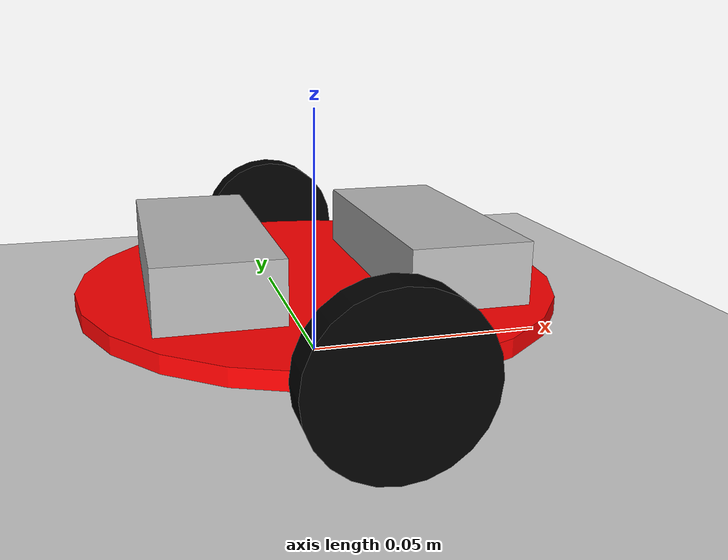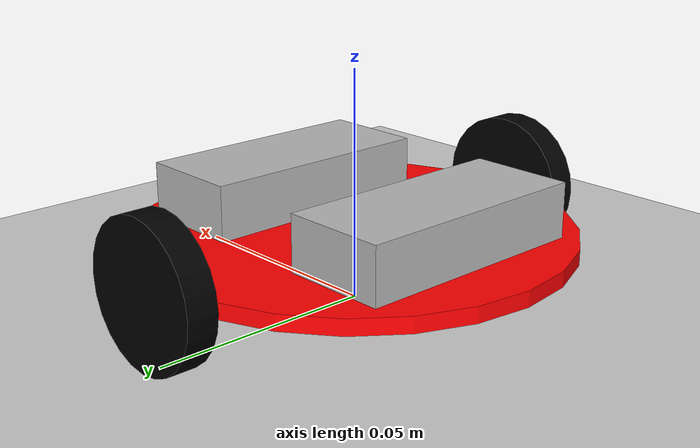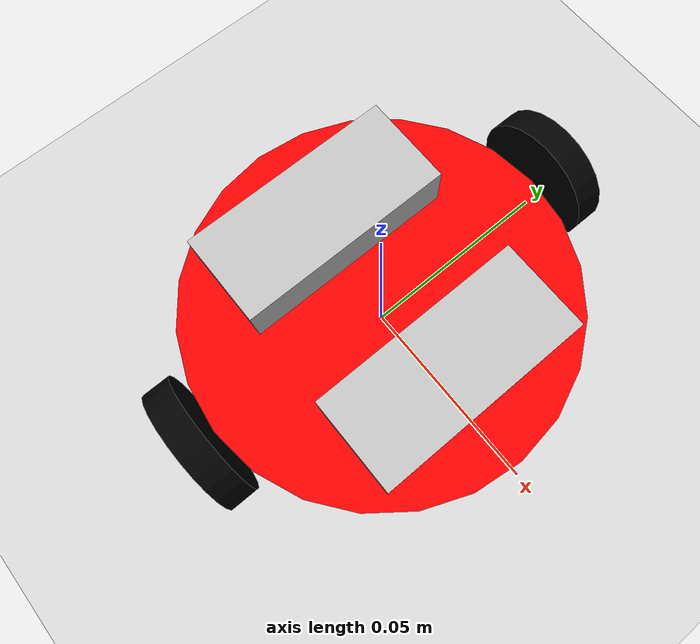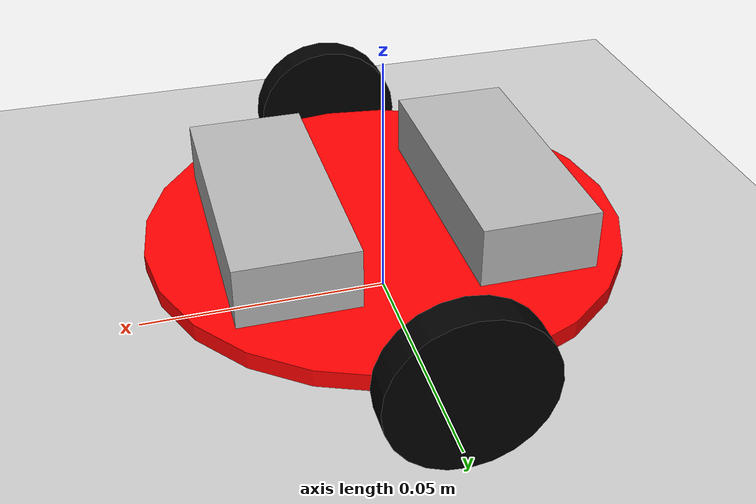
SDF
<sdf version='1.5'>
  <world name='default'>
    <physics type="ode">
      <gravity>0 0 -9.81</gravity>
      <real_time_update_rate>1000</real_time_update_rate>
      <max_step_size>0.001</max_step_size>
      <real_time_factor>1</real_time_factor>
      <ode>
        <solver>
          <iters>10</iters>
        </solver>
      </ode>
    </physics>

    <include>
      <uri>model://sun</uri>
    </include>

    <include>
      <uri>model://ground_plane</uri>
    </include>

    <include>
      <uri>model://ThreePi</uri>
      <plugin name="ThreePiCTRL_POS" filename="libThreePi_controller_POS.so"/>
      <plugin name="ThreePiREC" filename="libThreePi_recorder.so"/>
    </include>

 </world>
</sdf>

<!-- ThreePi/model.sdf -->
<sdf version='1.4'>
  <model name="threepi">
    <static>false</static>
    <link name='chassis'>
      <pose>0 0 .01444 0 0 0</pose>
      <inertial>
        <pose>0.03 0 0 0 0 0</pose>
        <mass>90</mass>
        <inertia>
          <ixx>0.050645</ixx>
          <ixy>0.0</ixy>
          <ixz>0.0</ixz>
          <iyy>0.050645</iyy>
          <iyz>0.0</iyz>
          <izz>0.099557</izz>
        </inertia>
      </inertial>

      <collision name='collision'>
        <geometry>
          <cylinder>
            <radius>.04713</radius>
            <length>.0034</length>
          </cylinder>
        </geometry>
      </collision>

      <visual name='visual'>
        <geometry>
          <cylinder>
            <radius>.04713</radius>
            <length>.0034</length>
          </cylinder>
        </geometry>
        <material>
          <ambient>0.7 0.7 0.7 1</ambient>
          <diffuse>1 0 0 1</diffuse>
          <specular>0.1 0.1 0.1 1</specular>
          <emissive>0 0 0 0</emissive>
        </material>
      </visual>

      <visual name='box_1'>
        <pose>.0225 0 .0077 0 0 0</pose>
        <geometry>
		      <box>
            <size>.023 .053 .012</size>
          </box>
        </geometry>
      </visual>

      <visual name='box_2'>
        <pose>-.0225 0 .0077 0 0 0</pose>
          <geometry>
		        <box>
              <size>.023 .053 .012</size>
            </box>
          </geometry>
      </visual>

      <collision name='caster_collision'>
        <pose>0.034 0 -0.00807 0 0 0</pose>
          <geometry>
            <sphere>
              <radius>.00637</radius>
            </sphere>
          </geometry>
          <surface>
            <friction>
              <ode>
                <mu>0.0</mu>
                <mu2>0.0</mu2>
                <slip1>0.0</slip1>
                <slip2>0.0</slip2>
              </ode>
            </friction>
          </surface>
        </collision>

        <visual name='caster_visual'>
          <pose>0.034 0 -0.00807 0 0 0</pose>
            <geometry>
              <sphere>
                <radius>.00637</radius>
              </sphere>
            </geometry>
            <material>
              <ambient>0.8 0.8 0 0.8</ambient>
              <diffuse>0.8 0 0 1</diffuse>
              <specular>0.1 0.1 0.1 1</specular>
              <emissive>0 0 0 0</emissive>
           </material>
       </visual>
     </link>

     <link name="left_wheel">
       <pose>0 0.05043 0.0156 0 1.5707 1.5707</pose>
         <collision name="collision">
           <geometry>
             <cylinder>
               <radius>.0156</radius>
               <length>.0066</length>
             </cylinder>
           </geometry>
         </collision>
         <visual name="visual">
           <geometry>
             <cylinder>
               <radius>.0156</radius>
               <length>.0066</length>
             </cylinder>
           </geometry>
           <material>
             <ambient>0 0 0 1</ambient>
             <diffuse>0 0 0 1</diffuse>
             <specular>0.1 0.1 0.1 1</specular>
             <emissive>0 0 0 0</emissive>
           </material>
         </visual>
         <inertial>
           <mass>4</mass>
           <inertia>
             <ixx>0.00027008332</ixx>
             <ixy>0.0</ixy>
             <ixz>0.0</ixz>
             <iyy>0.00027008332</iyy>
             <iyz>0.0</iyz>
             <izz>0.000512</izz>
           </inertia>
         </inertial>
     </link>

     <link name="right_wheel">
       <pose>0 -0.05043 0.0156 0 1.5707 1.5707</pose>
       <collision name="collision">
         <geometry>
           <cylinder>
             <radius>.0156</radius>
             <length>.0066</length>
           </cylinder>
         </geometry>
       </collision>
       <visual name="visual">
         <geometry>
           <cylinder>
             <radius>.0156</radius>
             <length>.0066</length>
           </cylinder>
         </geometry>
         <material>
           <ambient>0 0 0 1</ambient>
           <diffuse>0 0 0 1</diffuse>
           <specular>0.1 0.1 0.1 1</specular>
           <emissive>0 0 0 0</emissive>
         </material>
       </visual>
       <inertial>
         <mass>4</mass>
         <inertia>
           <ixx>0.00027008332</ixx>
           <ixy>0.0</ixy>
           <ixz>0.0</ixz>
           <iyy>0.00027008332</iyy>
           <iyz>0.0</iyz>
           <izz>0.000512</izz>
         </inertia>
       </inertial>
    </link>

    <joint type="revolute" name="left_wheel_joint">
       <pose>0 0 0 0 0 0</pose>
       <child>left_wheel</child>
       <parent>chassis</parent>
         <axis>
           <xyz>0 1 0</xyz>
           <dynamics>
             <damping>0.01</damping>
           </dynamics>
         </axis>
    </joint>

    <joint type="revolute" name="right_wheel_joint">
      <pose>0 0 0 0 0 0</pose>
      <child>right_wheel</child>
      <parent>chassis</parent>
        <axis>
          <xyz>0 1 0</xyz>
          <dynamics>
            <damping>0.01</damping>
          </dynamics>
        </axis>
    </joint>
  </model>
</sdf>
